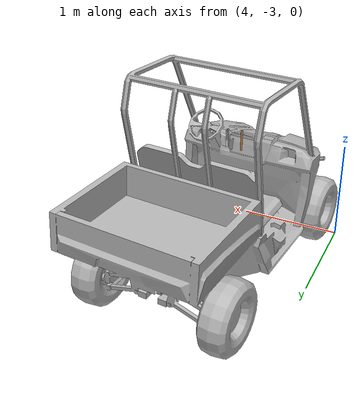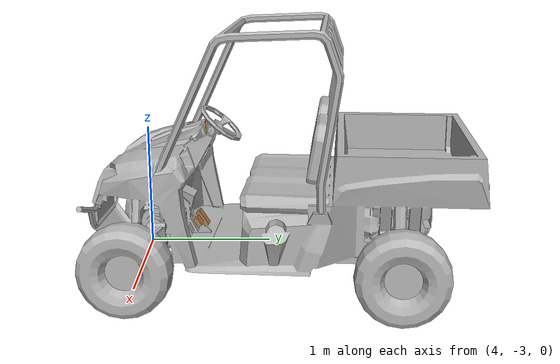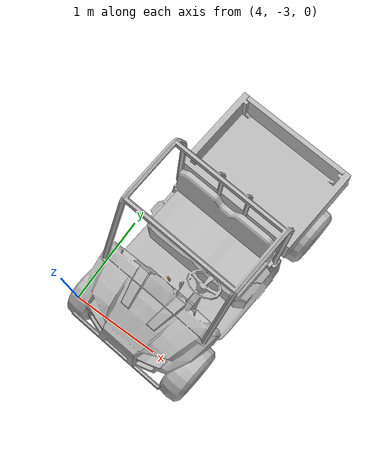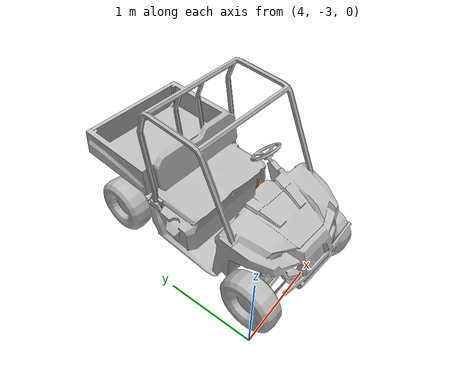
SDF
<sdf version="1.6">
 <world name="default">
  <model name="polaris_ranger_ev_clone_4">
   <static>true</static>
   <link name="chassis">
    <inertial>
     <mass>720</mass>
     <inertia><ixx>140</ixx><ixy>0</ixy><iyy>550</iyy><ixz>0</ixz><iyz>0</iyz><izz>550</izz></inertia>
    </inertial>
    <visual name="visual">
     <pose>0 0 0 0 0 -1.5708</pose>
     <geometry><mesh><uri>model://polaris_ranger_ev/meshes/polaris.dae</uri><scale>1 1 1</scale></mesh></geometry>
     <material>
      <script>
       <uri>model://polaris_ranger_ev/materials/scripts</uri>
       <uri>model://polaris_ranger_ev/materials/textures</uri>
       <name>Polaris/Diffuse</name>
      </script>
     </material>
    </visual>
    <collision name="chassis_bottom">
     <pose>0 0 0.35 0 -0 0</pose>
     <geometry><box><size>2 1 0.1</size></box></geometry>
    </collision>
    <collision name="cargo_bottom">
     <pose>-0.9 0 0.9 0 -0 0</pose>
     <geometry><box><size>0.9 1.2 0.01</size></box></geometry>
    </collision>
    <collision name="cargo_front">
     <pose>-0.45 0 1.025 0 -0 0</pose>
     <geometry><box><size>0.05 1.2 0.25</size></box></geometry>
    </collision>
    <collision name="cargo_back">
     <pose>-1.35 0 1.025 0 -0 0</pose>
     <geometry><box><size>0.05 1.2 0.25</size></box></geometry>
    </collision>
    <collision name="cargo_left">
     <pose>-0.9 0.6 1.025 0 -0 0</pose>
     <geometry><box><size>0.9 0.05 0.25</size></box></geometry>
    </collision>
    <collision name="cargo_right">
     <pose>-0.9 -0.6 1.025 0 -0 0</pose>
     <geometry><box><size>0.9 0.05 0.25</size></box></geometry>
    </collision>
    <collision name="seat">
     <pose>-0.1 0 0.625 0 -0 0</pose>
     <geometry><box><size>0.6 1 0.65</size></box></geometry>
    </collision>
    <collision name="seat_back">
     <pose>-0.3 0 1.125 0 -0.2 0</pose>
     <geometry><box><size>0.1 1 0.4</size></box></geometry>
    </collision>
    <collision name="engine">
     <pose>0.95 0 0.7 0 -0 0</pose>
     <geometry><box><size>0.58 1 0.8</size></box></geometry>
    </collision>
    <collision name="steering_column">
     <pose>0.525 0.3 1.025 0 -0.8 0</pose>
     <geometry><cylinder><radius>0.05</radius><length>0.45</length></cylinder></geometry>
    </collision>
   </link>
   <link name="rear_right_wheel">
    <pose>-0.85 -0.6 0.32 1.5708 -0 0</pose>
    <inertial>
     <mass>12</mass>
     <inertia><ixx>0.5</ixx><ixy>0</ixy><iyy>0.5</iyy><ixz>0</ixz><iyz>0</iyz><izz>1</izz></inertia>
    </inertial>
    <collision name="collision">
     <geometry><cylinder><radius>0.32</radius><length>0.23</length></cylinder></geometry>
     <surface>
      <friction><ode><mu>100000</mu><mu2>100000</mu2><slip1>0</slip1><slip2>0</slip2></ode></friction>
     </surface>
    </collision>
   </link>
   <joint name="rear_right_wheel_joint" type="revolute">
    <pose>0 0 -0.1 0 -0 0</pose>
    <child>rear_right_wheel</child>
    <parent>chassis</parent>
    <axis>
     <xyz>0 1 0</xyz>
     <use_parent_model_frame>1</use_parent_model_frame>
     <limit><lower>-1e+16</lower><upper>1e+16</upper></limit>
     <dynamics><spring_reference>0</spring_reference><spring_stiffness>0</spring_stiffness></dynamics>
    </axis>
    <physics><ode><limit><cfm>0</cfm><erp>0.9</erp></limit></ode></physics>
   </joint>
   <link name="rear_left_wheel">
    <pose>-0.85 0.6 0.32 1.5708 -0 0</pose>
    <inertial>
     <mass>12</mass>
     <inertia><ixx>0.5</ixx><ixy>0</ixy><iyy>0.5</iyy><ixz>0</ixz><iyz>0</iyz><izz>1</izz></inertia>
    </inertial>
    <collision name="collision">
     <geometry><cylinder><radius>0.32</radius><length>0.23</length></cylinder></geometry>
     <surface>
      <friction><ode><mu>100000</mu><mu2>100000</mu2><slip1>0</slip1><slip2>0</slip2></ode></friction>
     </surface>
    </collision>
   </link>
   <joint name="rear_left_wheel_joint" type="revolute">
    <child>rear_left_wheel</child>
    <parent>chassis</parent>
    <axis>
     <xyz>0 1 0</xyz>
     <use_parent_model_frame>1</use_parent_model_frame>
     <limit><lower>-1e+16</lower><upper>1e+16</upper></limit>
     <dynamics><spring_reference>0</spring_reference><spring_stiffness>0</spring_stiffness></dynamics>
    </axis>
    <physics><ode><limit><cfm>0</cfm><erp>0.9</erp></limit></ode></physics>
   </joint>
   <link name="front_right_wheel">
    <pose>1.03 -0.6 0.32 1.5708 -0 0</pose>
    <inertial>
     <mass>12</mass>
     <inertia><ixx>0.5</ixx><ixy>0</ixy><iyy>0.5</iyy><ixz>0</ixz><iyz>0</iyz><izz>1</izz></inertia>
    </inertial>
    <collision name="collision">
     <geometry><cylinder><radius>0.32</radius><length>0.23</length></cylinder></geometry>
     <surface>
      <friction><ode><mu>100000</mu><mu2>100000</mu2><slip1>0</slip1><slip2>0</slip2></ode></friction>
     </surface>
    </collision>
   </link>
   <link name="front_right_wheel_steering_block">
    <pose>1.03 -0.5 0.32 1.5708 -0 0</pose>
    <inertial>
     <mass>1</mass>
     <inertia><ixx>1</ixx><ixy>0</ixy><iyy>1</iyy><ixz>0</ixz><iyz>0</iyz><izz>1</izz></inertia>
    </inertial>
    <collision name="collision">
     <geometry><cylinder><radius>0.05</radius><length>0.01</length></cylinder></geometry>
    </collision>
   </link>
   <joint name="front_right_steering_joint" type="revolute">
    <child>front_right_wheel_steering_block</child>
    <parent>chassis</parent>
    <axis>
     <xyz>0 0 1</xyz>
     <limit><lower>-1</lower><upper>1</upper></limit>
     <use_parent_model_frame>1</use_parent_model_frame>
     <dynamics><spring_reference>0</spring_reference><spring_stiffness>0</spring_stiffness></dynamics>
    </axis>
    <physics><ode><limit><cfm>0</cfm><erp>0.9</erp></limit></ode></physics>
   </joint>
   <joint name="front_right_wheel_joint" type="revolute">
    <child>front_right_wheel</child>
    <parent>front_right_wheel_steering_block</parent>
    <axis>
     <xyz>0 1 0</xyz>
     <use_parent_model_frame>1</use_parent_model_frame>
     <limit><lower>-1e+16</lower><upper>1e+16</upper></limit>
     <dynamics><spring_reference>0</spring_reference><spring_stiffness>0</spring_stiffness></dynamics>
    </axis>
    <physics><ode><limit><cfm>0</cfm><erp>0.9</erp></limit></ode></physics>
   </joint>
   <link name="front_left_wheel">
    <pose>1.03 0.6 0.32 1.5708 -0 0</pose>
    <inertial>
     <mass>12</mass>
     <inertia><ixx>0.5</ixx><ixy>0</ixy><iyy>0.5</iyy><ixz>0</ixz><iyz>0</iyz><izz>1</izz></inertia>
    </inertial>
    <collision name="collision">
     <geometry><cylinder><radius>0.32</radius><length>0.23</length></cylinder></geometry>
     <surface>
      <friction><ode><mu>100000</mu><mu2>100000</mu2><slip1>0</slip1><slip2>0</slip2></ode></friction>
     </surface>
    </collision>
   </link>
   <link name="front_left_wheel_steering_block">
    <pose>1.03 0.5 0.32 1.5708 -0 0</pose>
    <inertial>
     <mass>1</mass>
     <inertia><ixx>1</ixx><ixy>0</ixy><iyy>1</iyy><ixz>0</ixz><iyz>0</iyz><izz>1</izz></inertia>
    </inertial>
    <collision name="collision">
     <geometry><cylinder><radius>0.05</radius><length>0.01</length></cylinder></geometry>
    </collision>
   </link>
   <joint name="front_left_steering_joint" type="revolute">
    <child>front_left_wheel_steering_block</child>
    <parent>chassis</parent>
    <axis>
     <xyz>0 0 1</xyz>
     <limit><lower>-1</lower><upper>1</upper></limit>
     <use_parent_model_frame>1</use_parent_model_frame>
     <dynamics><spring_reference>0</spring_reference><spring_stiffness>0</spring_stiffness></dynamics>
    </axis>
    <physics><ode><limit><cfm>0</cfm><erp>0.9</erp></limit></ode></physics>
   </joint>
   <joint name="front_left_wheel_joint" type="revolute">
    <child>front_left_wheel</child>
    <parent>front_left_wheel_steering_block</parent>
    <axis>
     <xyz>0 1 0</xyz>
     <use_parent_model_frame>1</use_parent_model_frame>
     <limit><lower>-1e+16</lower><upper>1e+16</upper></limit>
     <dynamics><spring_reference>0</spring_reference><spring_stiffness>0</spring_stiffness></dynamics>
    </axis>
    <physics><ode><limit><cfm>0</cfm><erp>0.9</erp></limit></ode></physics>
   </joint>
   <link name="gas_pedal">
    <pose>0.53 0.14 0.56 0 -1 0</pose>
    <gravity>0</gravity>
    <inertial>
     <mass>0.1</mass>
     <inertia><ixx>0.01</ixx><ixy>0</ixy><ixz>0</ixz><iyy>0.01</iyy><iyz>0</iyz><izz>0.01</izz></inertia>
    </inertial>
    <collision name="gas_pedal_collision"><geometry><box><size>0.12 0.07 0.03</size></box></geometry></collision>
    <visual name="gas_pedal_visual">
     <geometry><box><size>0.12 0.07 0.03</size></box></geometry>
     <material>
      <script><uri>file://media/materials/scripts/gazebo.material</uri><name>Gazebo/Wood</name></script>
      <ambient>0.2 0.2 0.2 1</ambient>
      <diffuse>0.2 0.2 0.2 1</diffuse>
      <specular>0.2 0.2 0.2 1</specular>
      <emissive>0.5 0.5 0.5 1</emissive>
     </material>
    </visual>
   </link>
   <link name="brake_pedal">
    <gravity>0</gravity>
    <pose>0.54 0.27 0.58 0 -1 0</pose>
    <inertial>
     <mass>0.1</mass>
     <inertia><ixx>0.01</ixx><ixy>0</ixy><ixz>0</ixz><iyy>0.01</iyy><iyz>0</iyz><izz>0.01</izz></inertia>
    </inertial>
    <collision name="brake_pedal_collision">
     <geometry><box><size>0.06 0.08 0.03</size></box></geometry>
    </collision>
    <visual name="brake_pedal_visual">
     <geometry><box><size>0.06 0.08 0.03</size></box></geometry>
     <material>
      <script><uri>file://media/materials/scripts/gazebo.material</uri><name>Gazebo/Wood</name></script>
      <ambient>0.2 0.2 0.2 1</ambient>
      <diffuse>0.2 0.2 0.2 1</diffuse>
      <specular>0.2 0.2 0.2 1</specular>
      <emissive>0.5 0.5 0.5 1</emissive>
     </material>
    </visual>
   </link>
   <link name="steering_wheel">
    <pose>0.37 0.3 1.2 0 -0.8 0</pose>
    <inertial>
     <mass>1</mass>
     <inertia><ixx>0.1</ixx><ixy>0</ixy><ixz>0</ixz><iyy>0.1</iyy><iyz>0</iyz><izz>1</izz></inertia>
    </inertial>
    <collision name="steering_wheel_post_left">
     <pose>0 0.08 0 1.5708 -0 0</pose>
     <geometry><cylinder><radius>0.02</radius><length>0.15</length></cylinder></geometry>
    </collision>
    <collision name="steering_wheel_post_right">
     <pose>0 -0.08 0 1.5708 -0 0</pose>
     <geometry><cylinder><radius>0.02</radius><length>0.15</length></cylinder></geometry>
    </collision>
    <collision name="steering_wheel_post_middle">
     <pose>-0.08 0 0 3.14159 1.57079 3.14159</pose>
     <geometry><cylinder><radius>0.02</radius><length>0.15</length></cylinder></geometry>
    </collision>
    <collision name="collision00">
     <pose>0.15 0 0 3.14159 1.57079 -1.57079</pose>
     <geometry><cylinder><length>0.105066</length><radius>0.01</radius></cylinder></geometry>
    </collision>
    <collision name="collision01">
     <pose>0.121353 0.088168 0 3.14159 1.57079 -0.942483</pose>
     <geometry><cylinder><length>0.105066</length><radius>0.01</radius></cylinder></geometry>
    </collision>
    <collision name="collision02">
     <pose>0.046353 0.142658 0 3.14159 1.57079 -0.314163</pose>
     <geometry><cylinder><length>0.105066</length><radius>0.01</radius></cylinder></geometry>
    </collision>
    <collision name="collision03">
     <pose>-0.046353 0.142658 0 3.14159 1.57079 0.314163</pose>
     <geometry><cylinder><length>0.105066</length><radius>0.01</radius></cylinder></geometry>
    </collision>
    <collision name="collision04">
     <pose>-0.121353 0.088168 0 -3.14159 1.57079 0.942483</pose>
     <geometry><cylinder><length>0.105066</length><radius>0.01</radius></cylinder></geometry>
    </collision>
    <collision name="collision05">
     <pose>-0.15 0 0 -3.14159 1.57079 1.57079</pose>
     <geometry><cylinder><length>0.105066</length><radius>0.01</radius></cylinder></geometry>
    </collision>
    <collision name="collision06">
     <pose>-0.121353 -0.088168 0 3.14159 1.57079 2.19912</pose>
     <geometry><cylinder><length>0.105066</length><radius>0.01</radius></cylinder></geometry>
    </collision>
    <collision name="collision07">
     <pose>-0.046353 -0.142658 0 -3.14159 1.57079 2.82743</pose>
     <geometry><cylinder><length>0.105066</length><radius>0.01</radius></cylinder></geometry>
    </collision>
    <collision name="collision08">
     <pose>0.046353 -0.142658 0 3.14159 1.57079 -2.82743</pose>
     <geometry><cylinder><length>0.105066</length><radius>0.01</radius></cylinder></geometry>
    </collision>
    <collision name="collision09">
     <pose>0.121353 -0.088168 0 -3.14159 1.57079 -2.19911</pose>
     <geometry><cylinder><length>0.105066</length><radius>0.01</radius></cylinder></geometry>
    </collision>
   </link>
   <link name="hand_brake">
    <pose>0.5 0 1.05 3.14159 -0.058407 3.14159</pose>
    <inertial>
     <mass>1</mass>
     <pose>0 0 -0.15 0 -0 0</pose>
     <inertia><ixx>0.1</ixx><ixy>0</ixy><ixz>0</ixz><iyy>0.1</iyy><iyz>0</iyz><izz>1</izz></inertia>
    </inertial>
    <collision name="hand_brake_collision">
     <pose>0 0 -0.1 0 -0 0</pose>
     <geometry><cylinder><radius>0.01</radius><length>0.2</length></cylinder></geometry>
    </collision>
    <visual name="hand_brake_visual">
     <pose>0 0 -0.1 0 -0 0</pose>
     <geometry><cylinder><radius>0.01</radius><length>0.2</length></cylinder></geometry>
     <material>
      <script><uri>file://media/materials/scripts/gazebo.material</uri><name>Gazebo/Wood</name></script>
     </material>
    </visual>
   </link>
   <joint name="gas_joint" type="prismatic">
    <parent>chassis</parent>
    <child>gas_pedal</child>
    <axis>
     <xyz>1 0 -1</xyz>
     <limit><lower>0</lower><upper>0.15</upper></limit>
     <use_parent_model_frame>1</use_parent_model_frame>
     <dynamics><spring_reference>0</spring_reference><spring_stiffness>0</spring_stiffness></dynamics>
    </axis>
   </joint>
   <joint name="brake_joint" type="prismatic">
    <parent>chassis</parent>
    <child>brake_pedal</child>
    <axis>
     <xyz>1 0 -0.6</xyz>
     <limit><lower>0</lower><upper>0.15</upper></limit>
     <use_parent_model_frame>1</use_parent_model_frame>
     <dynamics><spring_reference>0</spring_reference><spring_stiffness>0</spring_stiffness></dynamics>
    </axis>
   </joint>
   <joint name="steering_joint" type="revolute">
    <pose>0 0 0 1.5708 -0.8 0</pose>
    <parent>chassis</parent>
    <child>steering_wheel</child>
    <axis>
     <xyz>-1 0 1.023</xyz>
     <limit><lower>-7.853</lower><upper>7.853</upper></limit>
     <use_parent_model_frame>1</use_parent_model_frame>
     <dynamics><spring_reference>0</spring_reference><spring_stiffness>0</spring_stiffness></dynamics>
    </axis>
   </joint>
   <joint name="hand_brake_joint" type="revolute">
    <parent>chassis</parent>
    <child>hand_brake</child>
    <axis>
     <xyz>0 -1 0</xyz>
     <limit><lower>0</lower><upper>0.6</upper></limit>
     <use_parent_model_frame>1</use_parent_model_frame>
     <dynamics><spring_reference>0</spring_reference><spring_stiffness>0</spring_stiffness></dynamics>
    </axis>
   </joint>
   <pose>4.89096 -1.92769 -4.6e-05 0 5.3e-05 -1.65637</pose>
  </model>
 </world>
</sdf>
